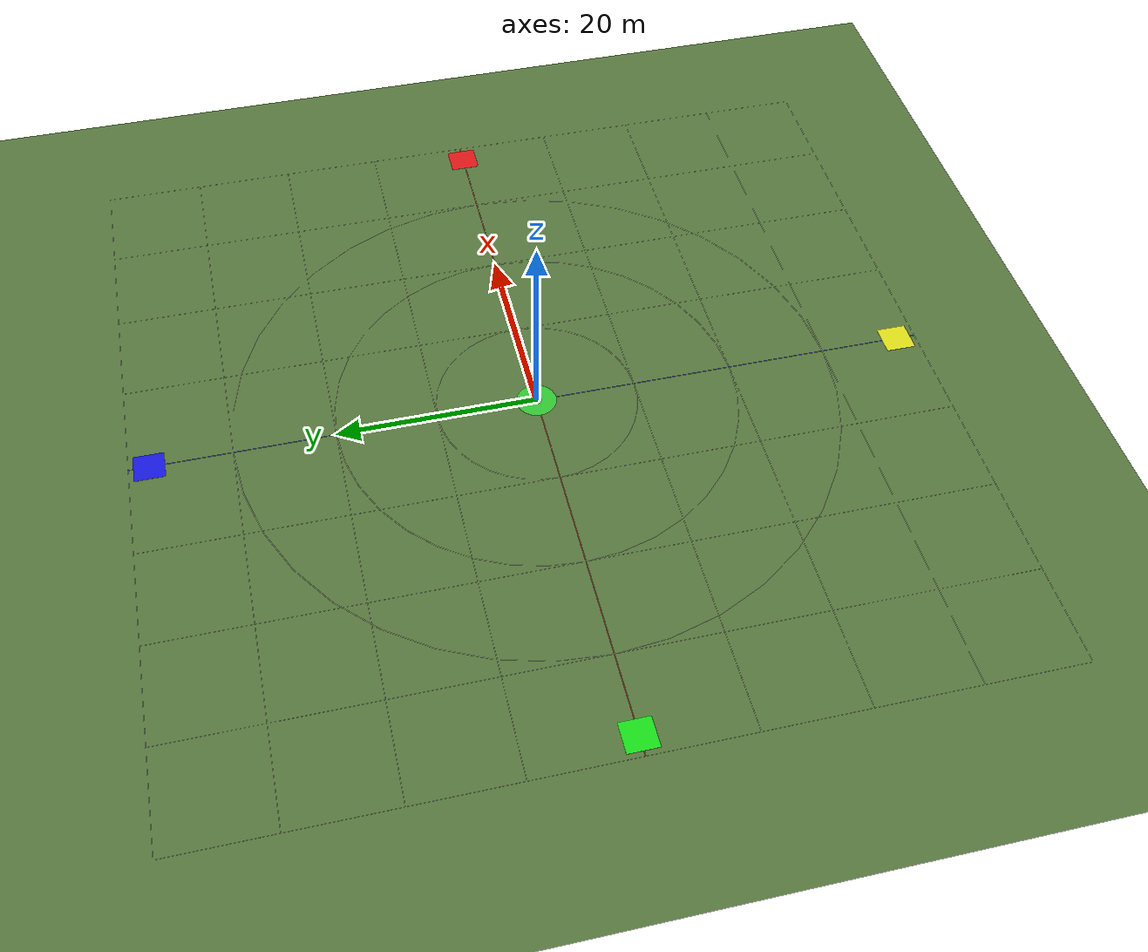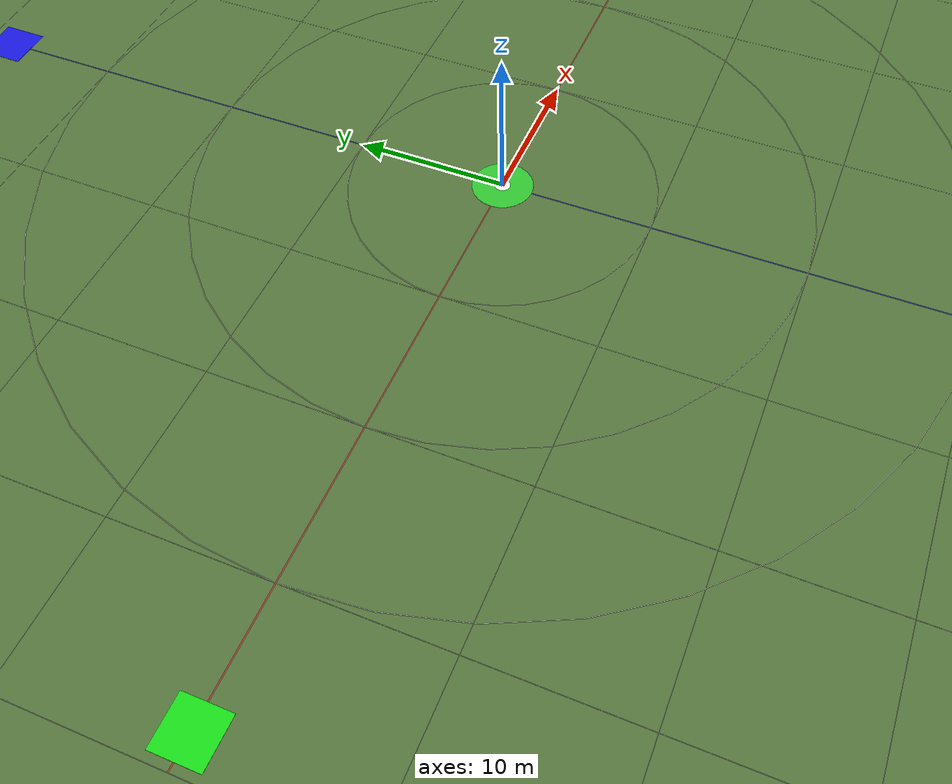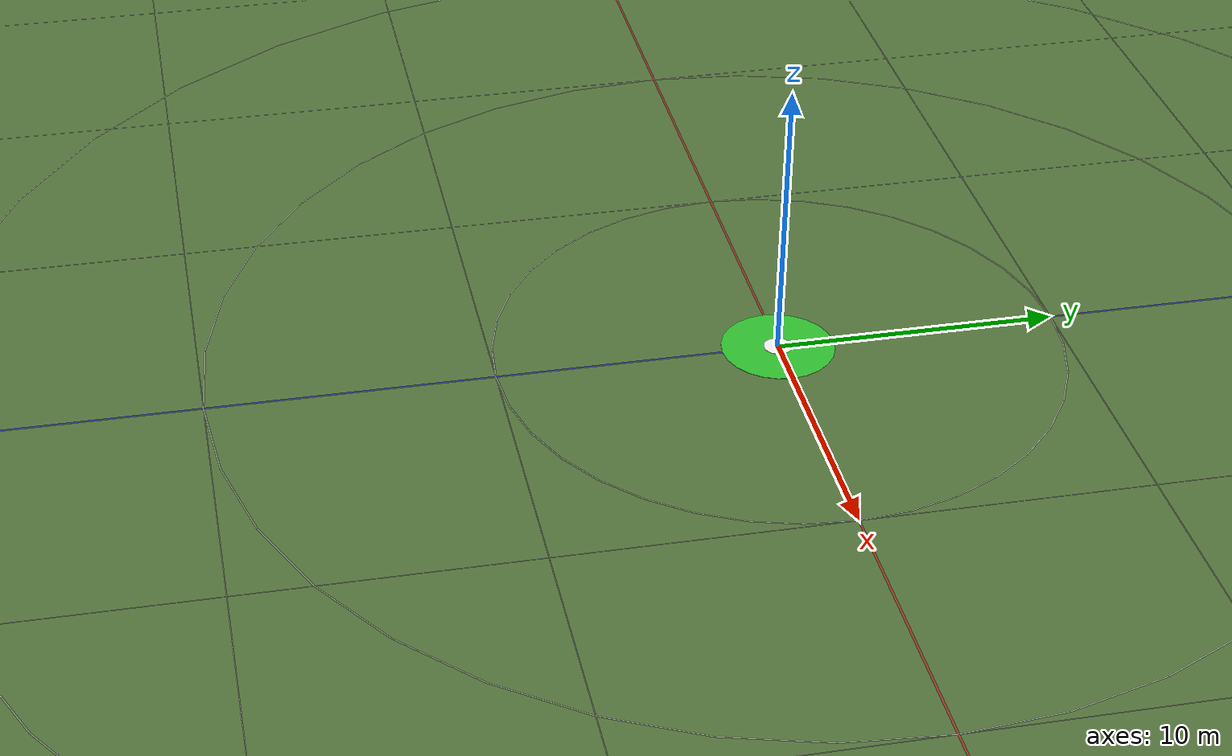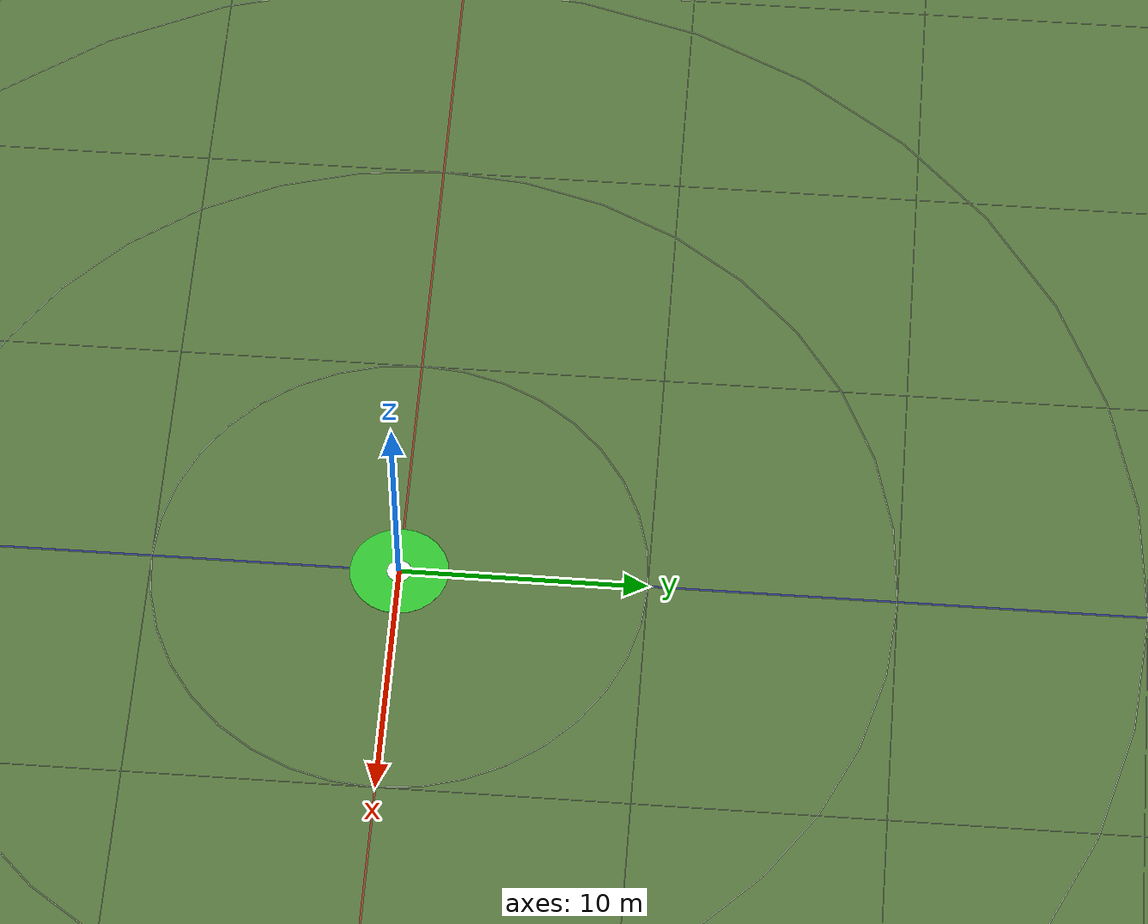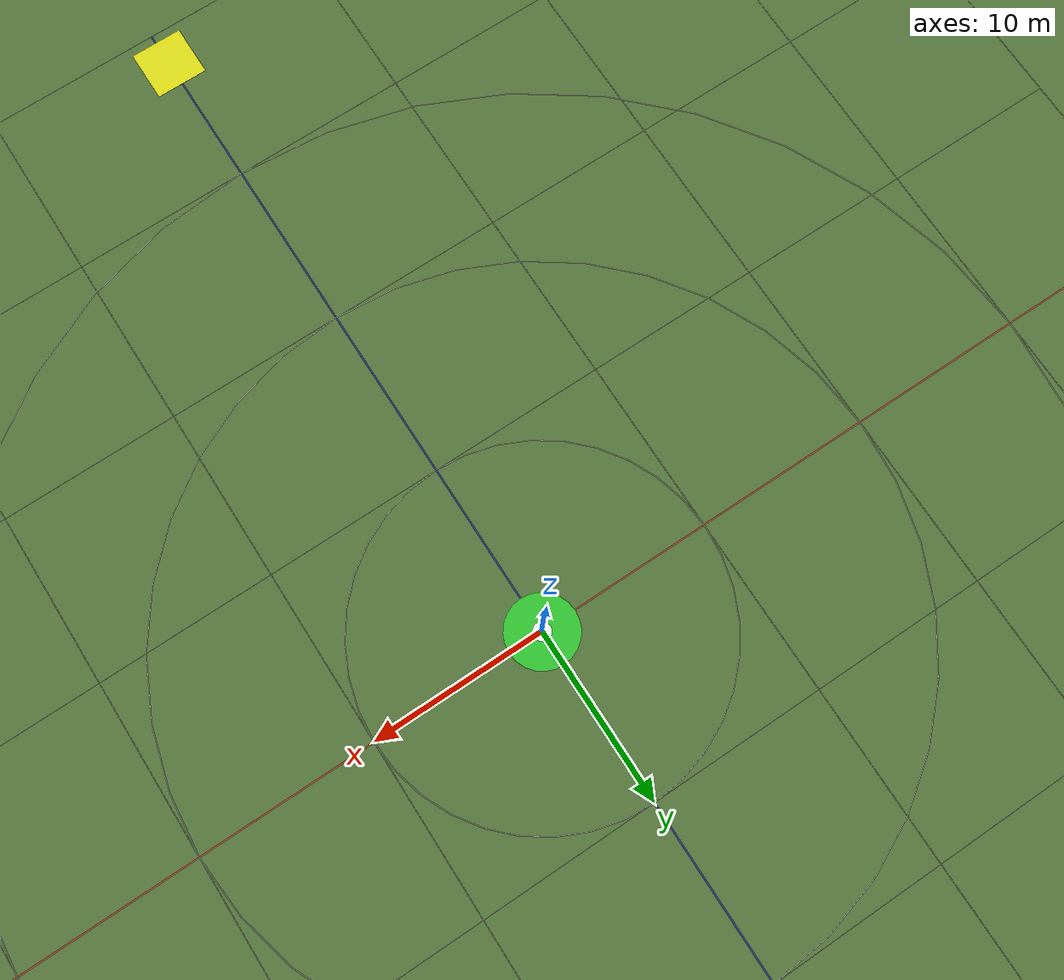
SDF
<?xml version="1.0" encoding="UTF-8"?>
<sdf version="1.9">
  <world name="default">
    <physics type="ode">
      <max_step_size>0.004</max_step_size>
      <real_time_factor>1.0</real_time_factor>
      <real_time_update_rate>250</real_time_update_rate>
    </physics>
    <gravity>0 0 -9.8</gravity>
    <magnetic_field>6e-06 2.3e-05 -4.2e-05</magnetic_field>
    <atmosphere type="adiabatic"/>
    <scene>
      <grid>false</grid>
      <ambient>0.5 0.5 0.5 1</ambient>
      <background>0.6 0.8 1.0 1</background>
      <shadows>true</shadows>
    </scene>

    <model name="ground_plane">
      <static>true</static>
      <link name="link">
        <collision name="collision">
          <geometry><plane><normal>0 0 1</normal><size>1 1</size></plane></geometry>
          <surface><friction><ode/></friction><bounce/><contact/></surface>
        </collision>
        <visual name="visual">
          <geometry><plane><normal>0 0 1</normal><size>500 500</size></plane></geometry>
          <material>
            <ambient>0.35 0.48 0.25 1</ambient>
            <diffuse>0.35 0.48 0.25 1</diffuse>
            <specular>0.1 0.1 0.1 1</specular>
          </material>
        </visual>
        <pose>0 0 0 0 0 0</pose>
        <inertial>
          <pose>0 0 0 0 0 0</pose>
          <mass>1</mass>
          <inertia><ixx>1</ixx><ixy>0</ixy><ixz>0</ixz><iyy>1</iyy><iyz>0</iyz><izz>1</izz></inertia>
        </inertial>
        <enable_wind>false</enable_wind>
      </link>
      <pose>0 0 0 0 0 0</pose>
      <self_collide>false</self_collide>
    </model>

    <light name="sunUTC" type="directional">
      <pose>0 0 500 0 0 0</pose>
      <cast_shadows>true</cast_shadows>
      <intensity>1</intensity>
      <direction>0.001 0.625 -0.78</direction>
      <diffuse>0.904 0.904 0.904 1</diffuse>
      <specular>0.271 0.271 0.271 1</specular>
      <attenuation>
        <range>2000</range><linear>0</linear><constant>1</constant><quadratic>0</quadratic>
      </attenuation>
      <spot><inner_angle>0</inner_angle><outer_angle>0</outer_angle><falloff>0</falloff></spot>
    </light>

    <spherical_coordinates>
      <surface_model>EARTH_WGS84</surface_model>
      <world_frame_orientation>ENU</world_frame_orientation>
      <latitude_deg>47.397971057728974</latitude_deg>
      <longitude_deg>8.546163739800146</longitude_deg>
      <elevation>0</elevation>
    </spherical_coordinates>

    <!-- HOME MARKER (yeşil daire) -->
    <model name="home_marker">
      <static>true</static>
      <pose>0 0 0.005 0 0 0</pose>
      <link name="link">
        <visual name="v">
          <geometry><cylinder><radius>2.0</radius><length>0.01</length></cylinder></geometry>
          <material><ambient>0.2 0.8 0.2 0.9</ambient><diffuse>0.2 0.8 0.2 0.9</diffuse></material>
        </visual>
      </link>
    </model>

    <!-- HOME İÇ DAIRE (beyaz) -->
    <model name="home_inner">
      <static>true</static>
      <pose>0 0 0.006 0 0 0</pose>
      <link name="link">
        <visual name="v">
          <geometry><cylinder><radius>0.5</radius><length>0.01</length></cylinder></geometry>
          <material><ambient>1 1 1 0.9</ambient><diffuse>1 1 1 0.9</diffuse></material>
        </visual>
      </link>
    </model>

    <model name="grid_x_0"><static>true</static>
      <pose>0 -40 0.002 0 0 0</pose>
      <link name="l"><visual name="v">
        <geometry><box><size>80 0.03 0.002</size></box></geometry>
        <material><ambient>0.6 0.6 0.6 0.7</ambient><diffuse>0.6 0.6 0.6 0.7</diffuse></material>
      </visual></link>
    </model>

    <model name="grid_x_10"><static>true</static>
      <pose>0 -30 0.002 0 0 0</pose>
      <link name="l"><visual name="v">
        <geometry><box><size>80 0.03 0.002</size></box></geometry>
        <material><ambient>0.6 0.6 0.6 0.7</ambient><diffuse>0.6 0.6 0.6 0.7</diffuse></material>
      </visual></link>
    </model>

    <model name="grid_x_20"><static>true</static>
      <pose>0 -20 0.002 0 0 0</pose>
      <link name="l"><visual name="v">
        <geometry><box><size>80 0.03 0.002</size></box></geometry>
        <material><ambient>0.6 0.6 0.6 0.7</ambient><diffuse>0.6 0.6 0.6 0.7</diffuse></material>
      </visual></link>
    </model>

    <model name="grid_x_30"><static>true</static>
      <pose>0 -10 0.002 0 0 0</pose>
      <link name="l"><visual name="v">
        <geometry><box><size>80 0.03 0.002</size></box></geometry>
        <material><ambient>0.6 0.6 0.6 0.7</ambient><diffuse>0.6 0.6 0.6 0.7</diffuse></material>
      </visual></link>
    </model>

    <model name="grid_x_40"><static>true</static>
      <pose>0 0 0.002 0 0 0</pose>
      <link name="l"><visual name="v">
        <geometry><box><size>80 0.08 0.002</size></box></geometry>
        <material><ambient>0.8 0.2 0.2 0.7</ambient><diffuse>0.8 0.2 0.2 0.7</diffuse></material>
      </visual></link>
    </model>

    <model name="grid_x_50"><static>true</static>
      <pose>0 10 0.002 0 0 0</pose>
      <link name="l"><visual name="v">
        <geometry><box><size>80 0.03 0.002</size></box></geometry>
        <material><ambient>0.6 0.6 0.6 0.7</ambient><diffuse>0.6 0.6 0.6 0.7</diffuse></material>
      </visual></link>
    </model>

    <model name="grid_x_60"><static>true</static>
      <pose>0 20 0.002 0 0 0</pose>
      <link name="l"><visual name="v">
        <geometry><box><size>80 0.03 0.002</size></box></geometry>
        <material><ambient>0.6 0.6 0.6 0.7</ambient><diffuse>0.6 0.6 0.6 0.7</diffuse></material>
      </visual></link>
    </model>

    <model name="grid_x_70"><static>true</static>
      <pose>0 30 0.002 0 0 0</pose>
      <link name="l"><visual name="v">
        <geometry><box><size>80 0.03 0.002</size></box></geometry>
        <material><ambient>0.6 0.6 0.6 0.7</ambient><diffuse>0.6 0.6 0.6 0.7</diffuse></material>
      </visual></link>
    </model>

    <model name="grid_x_80"><static>true</static>
      <pose>0 40 0.002 0 0 0</pose>
      <link name="l"><visual name="v">
        <geometry><box><size>80 0.03 0.002</size></box></geometry>
        <material><ambient>0.6 0.6 0.6 0.7</ambient><diffuse>0.6 0.6 0.6 0.7</diffuse></material>
      </visual></link>
    </model>

    <model name="grid_y_0"><static>true</static>
      <pose>-40 0 0.002 0 0 1.5708</pose>
      <link name="l"><visual name="v">
        <geometry><box><size>80 0.03 0.002</size></box></geometry>
        <material><ambient>0.6 0.6 0.6 0.7</ambient><diffuse>0.6 0.6 0.6 0.7</diffuse></material>
      </visual></link>
    </model>

    <model name="grid_y_10"><static>true</static>
      <pose>-30 0 0.002 0 0 1.5708</pose>
      <link name="l"><visual name="v">
        <geometry><box><size>80 0.03 0.002</size></box></geometry>
        <material><ambient>0.6 0.6 0.6 0.7</ambient><diffuse>0.6 0.6 0.6 0.7</diffuse></material>
      </visual></link>
    </model>

    <model name="grid_y_20"><static>true</static>
      <pose>-20 0 0.002 0 0 1.5708</pose>
      <link name="l"><visual name="v">
        <geometry><box><size>80 0.03 0.002</size></box></geometry>
        <material><ambient>0.6 0.6 0.6 0.7</ambient><diffuse>0.6 0.6 0.6 0.7</diffuse></material>
      </visual></link>
    </model>

    <model name="grid_y_30"><static>true</static>
      <pose>-10 0 0.002 0 0 1.5708</pose>
      <link name="l"><visual name="v">
        <geometry><box><size>80 0.03 0.002</size></box></geometry>
        <material><ambient>0.6 0.6 0.6 0.7</ambient><diffuse>0.6 0.6 0.6 0.7</diffuse></material>
      </visual></link>
    </model>

    <model name="grid_y_40"><static>true</static>
      <pose>0 0 0.002 0 0 1.5708</pose>
      <link name="l"><visual name="v">
        <geometry><box><size>80 0.08 0.002</size></box></geometry>
        <material><ambient>0.2 0.2 0.8 0.7</ambient><diffuse>0.2 0.2 0.8 0.7</diffuse></material>
      </visual></link>
    </model>

    <model name="grid_y_50"><static>true</static>
      <pose>10 0 0.002 0 0 1.5708</pose>
      <link name="l"><visual name="v">
        <geometry><box><size>80 0.03 0.002</size></box></geometry>
        <material><ambient>0.6 0.6 0.6 0.7</ambient><diffuse>0.6 0.6 0.6 0.7</diffuse></material>
      </visual></link>
    </model>

    <model name="grid_y_60"><static>true</static>
      <pose>20 0 0.002 0 0 1.5708</pose>
      <link name="l"><visual name="v">
        <geometry><box><size>80 0.03 0.002</size></box></geometry>
        <material><ambient>0.6 0.6 0.6 0.7</ambient><diffuse>0.6 0.6 0.6 0.7</diffuse></material>
      </visual></link>
    </model>

    <model name="grid_y_70"><static>true</static>
      <pose>30 0 0.002 0 0 1.5708</pose>
      <link name="l"><visual name="v">
        <geometry><box><size>80 0.03 0.002</size></box></geometry>
        <material><ambient>0.6 0.6 0.6 0.7</ambient><diffuse>0.6 0.6 0.6 0.7</diffuse></material>
      </visual></link>
    </model>

    <model name="grid_y_80"><static>true</static>
      <pose>40 0 0.002 0 0 1.5708</pose>
      <link name="l"><visual name="v">
        <geometry><box><size>80 0.03 0.002</size></box></geometry>
        <material><ambient>0.6 0.6 0.6 0.7</ambient><diffuse>0.6 0.6 0.6 0.7</diffuse></material>
      </visual></link>
    </model>

    <model name="dir_north"><static>true</static>
      <pose>0 38 0.01 0 0 0</pose>
      <link name="l"><visual name="v">
        <geometry><box><size>3.0 3.0 0.02</size></box></geometry>
        <material><ambient>0.1 0.1 0.9 0.9</ambient><diffuse>0.1 0.1 0.9 0.9</diffuse></material>
      </visual></link>
    </model>

    <model name="dir_south"><static>true</static>
      <pose>0 -38 0.01 0 0 0</pose>
      <link name="l"><visual name="v">
        <geometry><box><size>3.0 3.0 0.02</size></box></geometry>
        <material><ambient>0.9 0.9 0.1 0.9</ambient><diffuse>0.9 0.9 0.1 0.9</diffuse></material>
      </visual></link>
    </model>

    <model name="dir_east"><static>true</static>
      <pose>38 0 0.01 0 0 0</pose>
      <link name="l"><visual name="v">
        <geometry><box><size>3.0 3.0 0.02</size></box></geometry>
        <material><ambient>0.9 0.1 0.1 0.9</ambient><diffuse>0.9 0.1 0.1 0.9</diffuse></material>
      </visual></link>
    </model>

    <model name="dir_west"><static>true</static>
      <pose>-38 0 0.01 0 0 0</pose>
      <link name="l"><visual name="v">
        <geometry><box><size>3.0 3.0 0.02</size></box></geometry>
        <material><ambient>0.1 0.9 0.1 0.9</ambient><diffuse>0.1 0.9 0.1 0.9</diffuse></material>
      </visual></link>
    </model>

    <model name="ring_10_0"><static>true</static>
      <pose>9.92403876506104 0.8682408883346516 0.003 0 0 1.6580627893946138</pose>
      <link name="l"><visual name="v">
        <geometry><box><size>1.7431148549531634 0.05 0.003</size></box></geometry>
        <material><ambient>0.9 0.9 0.9 0.5</ambient><diffuse>0.9 0.9 0.9 0.5</diffuse></material>
      </visual></link>
    </model>

    <model name="ring_10_1"><static>true</static>
      <pose>9.622501868990582 2.5783416049629952 0.003 0 0 1.8325957145940448</pose>
      <link name="l"><visual name="v">
        <geometry><box><size>1.7431148549531628 0.05 0.003</size></box></geometry>
        <material><ambient>0.9 0.9 0.9 0.5</ambient><diffuse>0.9 0.9 0.9 0.5</diffuse></material>
      </visual></link>
    </model>

    <model name="ring_10_2"><static>true</static>
      <pose>9.028590122851735 4.210100716628343 0.003 0 0 2.0071286397934793</pose>
      <link name="l"><visual name="v">
        <geometry><box><size>1.7431148549531632 0.05 0.003</size></box></geometry>
        <material><ambient>0.9 0.9 0.9 0.5</ambient><diffuse>0.9 0.9 0.9 0.5</diffuse></material>
      </visual></link>
    </model>

    <model name="ring_10_3"><static>true</static>
      <pose>8.160349234517083 5.713938048432696 0.003 0 0 2.1816615649929125</pose>
      <link name="l"><visual name="v">
        <geometry><box><size>1.7431148549531643 0.05 0.003</size></box></geometry>
        <material><ambient>0.9 0.9 0.9 0.5</ambient><diffuse>0.9 0.9 0.9 0.5</diffuse></material>
      </visual></link>
    </model>

    <model name="ring_10_4"><static>true</static>
      <pose>7.044160264027587 7.044160264027586 0.003 0 0 2.3561944901923444</pose>
      <link name="l"><visual name="v">
        <geometry><box><size>1.7431148549531632 0.05 0.003</size></box></geometry>
        <material><ambient>0.9 0.9 0.9 0.5</ambient><diffuse>0.9 0.9 0.9 0.5</diffuse></material>
      </visual></link>
    </model>

    <model name="ring_10_5"><static>true</static>
      <pose>5.713938048432697 8.160349234517083 0.003 0 0 2.530727415391778</pose>
      <link name="l"><visual name="v">
        <geometry><box><size>1.7431148549531625 0.05 0.003</size></box></geometry>
        <material><ambient>0.9 0.9 0.9 0.5</ambient><diffuse>0.9 0.9 0.9 0.5</diffuse></material>
      </visual></link>
    </model>

    <model name="ring_10_6"><static>true</static>
      <pose>4.210100716628345 9.028590122851735 0.003 0 0 2.7052603405912103</pose>
      <link name="l"><visual name="v">
        <geometry><box><size>1.7431148549531637 0.05 0.003</size></box></geometry>
        <material><ambient>0.9 0.9 0.9 0.5</ambient><diffuse>0.9 0.9 0.9 0.5</diffuse></material>
      </visual></link>
    </model>

    <model name="ring_10_7"><static>true</static>
      <pose>2.578341604962996 9.622501868990582 0.003 0 0 2.879793265790644</pose>
      <link name="l"><visual name="v">
        <geometry><box><size>1.7431148549531637 0.05 0.003</size></box></geometry>
        <material><ambient>0.9 0.9 0.9 0.5</ambient><diffuse>0.9 0.9 0.9 0.5</diffuse></material>
      </visual></link>
    </model>

    <model name="ring_10_8"><static>true</static>
      <pose>0.8682408883346524 9.92403876506104 0.003 0 0 3.0543261909900763</pose>
      <link name="l"><visual name="v">
        <geometry><box><size>1.7431148549531637 0.05 0.003</size></box></geometry>
        <material><ambient>0.9 0.9 0.9 0.5</ambient><diffuse>0.9 0.9 0.9 0.5</diffuse></material>
      </visual></link>
    </model>

    <model name="ring_10_9"><static>true</static>
      <pose>-0.8682408883346512 9.92403876506104 0.003 0 0 -3.0543261909900763</pose>
      <link name="l"><visual name="v">
        <geometry><box><size>1.7431148549531639 0.05 0.003</size></box></geometry>
        <material><ambient>0.9 0.9 0.9 0.5</ambient><diffuse>0.9 0.9 0.9 0.5</diffuse></material>
      </visual></link>
    </model>

    <model name="ring_10_10"><static>true</static>
      <pose>-2.578341604962994 9.622501868990582 0.003 0 0 -2.879793265790645</pose>
      <link name="l"><visual name="v">
        <geometry><box><size>1.7431148549531608 0.05 0.003</size></box></geometry>
        <material><ambient>0.9 0.9 0.9 0.5</ambient><diffuse>0.9 0.9 0.9 0.5</diffuse></material>
      </visual></link>
    </model>

    <model name="ring_10_11"><static>true</static>
      <pose>-4.210100716628341 9.028590122851735 0.003 0 0 -2.705260340591211</pose>
      <link name="l"><visual name="v">
        <geometry><box><size>1.7431148549531643 0.05 0.003</size></box></geometry>
        <material><ambient>0.9 0.9 0.9 0.5</ambient><diffuse>0.9 0.9 0.9 0.5</diffuse></material>
      </visual></link>
    </model>

    <model name="ring_10_12"><static>true</static>
      <pose>-5.713938048432696 8.160349234517083 0.003 0 0 -2.530727415391778</pose>
      <link name="l"><visual name="v">
        <geometry><box><size>1.7431148549531659 0.05 0.003</size></box></geometry>
        <material><ambient>0.9 0.9 0.9 0.5</ambient><diffuse>0.9 0.9 0.9 0.5</diffuse></material>
      </visual></link>
    </model>

    <model name="ring_10_13"><static>true</static>
      <pose>-7.044160264027586 7.044160264027587 0.003 0 0 -2.3561944901923453</pose>
      <link name="l"><visual name="v">
        <geometry><box><size>1.7431148549531608 0.05 0.003</size></box></geometry>
        <material><ambient>0.9 0.9 0.9 0.5</ambient><diffuse>0.9 0.9 0.9 0.5</diffuse></material>
      </visual></link>
    </model>

    <model name="ring_10_14"><static>true</static>
      <pose>-8.160349234517081 5.713938048432699 0.003 0 0 -2.1816615649929125</pose>
      <link name="l"><visual name="v">
        <geometry><box><size>1.7431148549531623 0.05 0.003</size></box></geometry>
        <material><ambient>0.9 0.9 0.9 0.5</ambient><diffuse>0.9 0.9 0.9 0.5</diffuse></material>
      </visual></link>
    </model>

    <model name="ring_10_15"><static>true</static>
      <pose>-9.028590122851735 4.210100716628347 0.003 0 0 -2.007128639793479</pose>
      <link name="l"><visual name="v">
        <geometry><box><size>1.7431148549531656 0.05 0.003</size></box></geometry>
        <material><ambient>0.9 0.9 0.9 0.5</ambient><diffuse>0.9 0.9 0.9 0.5</diffuse></material>
      </visual></link>
    </model>

    <model name="ring_10_16"><static>true</static>
      <pose>-9.622501868990582 2.5783416049629957 0.003 0 0 -1.8325957145940455</pose>
      <link name="l"><visual name="v">
        <geometry><box><size>1.7431148549531654 0.05 0.003</size></box></geometry>
        <material><ambient>0.9 0.9 0.9 0.5</ambient><diffuse>0.9 0.9 0.9 0.5</diffuse></material>
      </visual></link>
    </model>

    <model name="ring_10_17"><static>true</static>
      <pose>-9.92403876506104 0.8682408883346521 0.003 0 0 -1.6580627893946138</pose>
      <link name="l"><visual name="v">
        <geometry><box><size>1.7431148549531617 0.05 0.003</size></box></geometry>
        <material><ambient>0.9 0.9 0.9 0.5</ambient><diffuse>0.9 0.9 0.9 0.5</diffuse></material>
      </visual></link>
    </model>

    <model name="ring_10_18"><static>true</static>
      <pose>-9.924038765061042 -0.8682408883346495 0.003 0 0 -1.4835298641951804</pose>
      <link name="l"><visual name="v">
        <geometry><box><size>1.7431148549531617 0.05 0.003</size></box></geometry>
        <material><ambient>0.9 0.9 0.9 0.5</ambient><diffuse>0.9 0.9 0.9 0.5</diffuse></material>
      </visual></link>
    </model>

    <model name="ring_10_19"><static>true</static>
      <pose>-9.622501868990582 -2.5783416049629935 0.003 0 0 -1.3089969389957479</pose>
      <link name="l"><visual name="v">
        <geometry><box><size>1.7431148549531656 0.05 0.003</size></box></geometry>
        <material><ambient>0.9 0.9 0.9 0.5</ambient><diffuse>0.9 0.9 0.9 0.5</diffuse></material>
      </visual></link>
    </model>

    <model name="ring_10_20"><static>true</static>
      <pose>-9.028590122851735 -4.210100716628344 0.003 0 0 -1.1344640137963133</pose>
      <link name="l"><visual name="v">
        <geometry><box><size>1.7431148549531659 0.05 0.003</size></box></geometry>
        <material><ambient>0.9 0.9 0.9 0.5</ambient><diffuse>0.9 0.9 0.9 0.5</diffuse></material>
      </visual></link>
    </model>

    <model name="ring_10_21"><static>true</static>
      <pose>-8.160349234517085 -5.713938048432695 0.003 0 0 -0.9599310885968815</pose>
      <link name="l"><visual name="v">
        <geometry><box><size>1.743114854953157 0.05 0.003</size></box></geometry>
        <material><ambient>0.9 0.9 0.9 0.5</ambient><diffuse>0.9 0.9 0.9 0.5</diffuse></material>
      </visual></link>
    </model>

    <model name="ring_10_22"><static>true</static>
      <pose>-7.044160264027589 -7.0441602640275836 0.003 0 0 -0.7853981633974491</pose>
      <link name="l"><visual name="v">
        <geometry><box><size>1.7431148549531663 0.05 0.003</size></box></geometry>
        <material><ambient>0.9 0.9 0.9 0.5</ambient><diffuse>0.9 0.9 0.9 0.5</diffuse></material>
      </visual></link>
    </model>

    <model name="ring_10_23"><static>true</static>
      <pose>-5.7139380484327 -8.160349234517081 0.003 0 0 -0.6108652381980155</pose>
      <link name="l"><visual name="v">
        <geometry><box><size>1.7431148549531605 0.05 0.003</size></box></geometry>
        <material><ambient>0.9 0.9 0.9 0.5</ambient><diffuse>0.9 0.9 0.9 0.5</diffuse></material>
      </visual></link>
    </model>

    <model name="ring_10_24"><static>true</static>
      <pose>-4.210100716628345 -9.028590122851735 0.003 0 0 -0.43633231299858294</pose>
      <link name="l"><visual name="v">
        <geometry><box><size>1.7431148549531712 0.05 0.003</size></box></geometry>
        <material><ambient>0.9 0.9 0.9 0.5</ambient><diffuse>0.9 0.9 0.9 0.5</diffuse></material>
      </visual></link>
    </model>

    <model name="ring_10_25"><static>true</static>
      <pose>-2.5783416049629944 -9.622501868990582 0.003 0 0 -0.2617993877991484</pose>
      <link name="l"><visual name="v">
        <geometry><box><size>1.743114854953161 0.05 0.003</size></box></geometry>
        <material><ambient>0.9 0.9 0.9 0.5</ambient><diffuse>0.9 0.9 0.9 0.5</diffuse></material>
      </visual></link>
    </model>

    <model name="ring_10_26"><static>true</static>
      <pose>-0.8682408883346525 -9.92403876506104 0.003 0 0 -0.08726646259971718</pose>
      <link name="l"><visual name="v">
        <geometry><box><size>1.7431148549531617 0.05 0.003</size></box></geometry>
        <material><ambient>0.9 0.9 0.9 0.5</ambient><diffuse>0.9 0.9 0.9 0.5</diffuse></material>
      </visual></link>
    </model>

    <model name="ring_10_27"><static>true</static>
      <pose>0.868240888334649 -9.924038765061042 0.003 0 0 0.08726646259971617</pose>
      <link name="l"><visual name="v">
        <geometry><box><size>1.7431148549531614 0.05 0.003</size></box></geometry>
        <material><ambient>0.9 0.9 0.9 0.5</ambient><diffuse>0.9 0.9 0.9 0.5</diffuse></material>
      </visual></link>
    </model>

    <model name="ring_10_28"><static>true</static>
      <pose>2.578341604962995 -9.622501868990582 0.003 0 0 0.2617993877991492</pose>
      <link name="l"><visual name="v">
        <geometry><box><size>1.7431148549531696 0.05 0.003</size></box></geometry>
        <material><ambient>0.9 0.9 0.9 0.5</ambient><diffuse>0.9 0.9 0.9 0.5</diffuse></material>
      </visual></link>
    </model>

    <model name="ring_10_29"><static>true</static>
      <pose>4.210100716628341 -9.028590122851737 0.003 0 0 0.43633231299858216</pose>
      <link name="l"><visual name="v">
        <geometry><box><size>1.7431148549531528 0.05 0.003</size></box></geometry>
        <material><ambient>0.9 0.9 0.9 0.5</ambient><diffuse>0.9 0.9 0.9 0.5</diffuse></material>
      </visual></link>
    </model>

    <model name="ring_10_30"><static>true</static>
      <pose>5.713938048432693 -8.160349234517085 0.003 0 0 0.6108652381980151</pose>
      <link name="l"><visual name="v">
        <geometry><box><size>1.743114854953171 0.05 0.003</size></box></geometry>
        <material><ambient>0.9 0.9 0.9 0.5</ambient><diffuse>0.9 0.9 0.9 0.5</diffuse></material>
      </visual></link>
    </model>

    <model name="ring_10_31"><static>true</static>
      <pose>7.044160264027585 -7.044160264027589 0.003 0 0 0.785398163397448</pose>
      <link name="l"><visual name="v">
        <geometry><box><size>1.7431148549531608 0.05 0.003</size></box></geometry>
        <material><ambient>0.9 0.9 0.9 0.5</ambient><diffuse>0.9 0.9 0.9 0.5</diffuse></material>
      </visual></link>
    </model>

    <model name="ring_10_32"><static>true</static>
      <pose>8.160349234517083 -5.713938048432697 0.003 0 0 0.9599310885968811</pose>
      <link name="l"><visual name="v">
        <geometry><box><size>1.7431148549531714 0.05 0.003</size></box></geometry>
        <material><ambient>0.9 0.9 0.9 0.5</ambient><diffuse>0.9 0.9 0.9 0.5</diffuse></material>
      </visual></link>
    </model>

    <model name="ring_10_33"><static>true</static>
      <pose>9.028590122851737 -4.210100716628341 0.003 0 0 1.1344640137963142</pose>
      <link name="l"><visual name="v">
        <geometry><box><size>1.7431148549531608 0.05 0.003</size></box></geometry>
        <material><ambient>0.9 0.9 0.9 0.5</ambient><diffuse>0.9 0.9 0.9 0.5</diffuse></material>
      </visual></link>
    </model>

    <model name="ring_10_34"><static>true</static>
      <pose>9.622501868990582 -2.5783416049629952 0.003 0 0 1.3089969389957483</pose>
      <link name="l"><visual name="v">
        <geometry><box><size>1.7431148549531612 0.05 0.003</size></box></geometry>
        <material><ambient>0.9 0.9 0.9 0.5</ambient><diffuse>0.9 0.9 0.9 0.5</diffuse></material>
      </visual></link>
    </model>

    <model name="ring_10_35"><static>true</static>
      <pose>9.92403876506104 -0.8682408883346532 0.003 0 0 1.4835298641951795</pose>
      <link name="l"><visual name="v">
        <geometry><box><size>1.7431148549531617 0.05 0.003</size></box></geometry>
        <material><ambient>0.9 0.9 0.9 0.5</ambient><diffuse>0.9 0.9 0.9 0.5</diffuse></material>
      </visual></link>
    </model>

    <model name="ring_20_0"><static>true</static>
      <pose>19.84807753012208 1.7364817766693033 0.003 0 0 1.6580627893946138</pose>
      <link name="l"><visual name="v">
        <geometry><box><size>3.486229709906327 0.05 0.003</size></box></geometry>
        <material><ambient>0.9 0.9 0.9 0.5</ambient><diffuse>0.9 0.9 0.9 0.5</diffuse></material>
      </visual></link>
    </model>

    <model name="ring_20_1"><static>true</static>
      <pose>19.245003737981165 5.1566832099259905 0.003 0 0 1.8325957145940448</pose>
      <link name="l"><visual name="v">
        <geometry><box><size>3.4862297099063255 0.05 0.003</size></box></geometry>
        <material><ambient>0.9 0.9 0.9 0.5</ambient><diffuse>0.9 0.9 0.9 0.5</diffuse></material>
      </visual></link>
    </model>

    <model name="ring_20_2"><static>true</static>
      <pose>18.05718024570347 8.420201433256686 0.003 0 0 2.0071286397934793</pose>
      <link name="l"><visual name="v">
        <geometry><box><size>3.4862297099063264 0.05 0.003</size></box></geometry>
        <material><ambient>0.9 0.9 0.9 0.5</ambient><diffuse>0.9 0.9 0.9 0.5</diffuse></material>
      </visual></link>
    </model>

    <model name="ring_20_3"><static>true</static>
      <pose>16.320698469034166 11.427876096865392 0.003 0 0 2.1816615649929125</pose>
      <link name="l"><visual name="v">
        <geometry><box><size>3.4862297099063286 0.05 0.003</size></box></geometry>
        <material><ambient>0.9 0.9 0.9 0.5</ambient><diffuse>0.9 0.9 0.9 0.5</diffuse></material>
      </visual></link>
    </model>

    <model name="ring_20_4"><static>true</static>
      <pose>14.088320528055174 14.088320528055172 0.003 0 0 2.3561944901923444</pose>
      <link name="l"><visual name="v">
        <geometry><box><size>3.4862297099063264 0.05 0.003</size></box></geometry>
        <material><ambient>0.9 0.9 0.9 0.5</ambient><diffuse>0.9 0.9 0.9 0.5</diffuse></material>
      </visual></link>
    </model>

    <model name="ring_20_5"><static>true</static>
      <pose>11.427876096865393 16.320698469034166 0.003 0 0 2.530727415391778</pose>
      <link name="l"><visual name="v">
        <geometry><box><size>3.486229709906325 0.05 0.003</size></box></geometry>
        <material><ambient>0.9 0.9 0.9 0.5</ambient><diffuse>0.9 0.9 0.9 0.5</diffuse></material>
      </visual></link>
    </model>

    <model name="ring_20_6"><static>true</static>
      <pose>8.42020143325669 18.05718024570347 0.003 0 0 2.7052603405912103</pose>
      <link name="l"><visual name="v">
        <geometry><box><size>3.4862297099063273 0.05 0.003</size></box></geometry>
        <material><ambient>0.9 0.9 0.9 0.5</ambient><diffuse>0.9 0.9 0.9 0.5</diffuse></material>
      </visual></link>
    </model>

    <model name="ring_20_7"><static>true</static>
      <pose>5.156683209925992 19.245003737981165 0.003 0 0 2.879793265790644</pose>
      <link name="l"><visual name="v">
        <geometry><box><size>3.4862297099063273 0.05 0.003</size></box></geometry>
        <material><ambient>0.9 0.9 0.9 0.5</ambient><diffuse>0.9 0.9 0.9 0.5</diffuse></material>
      </visual></link>
    </model>

    <model name="ring_20_8"><static>true</static>
      <pose>1.7364817766693048 19.84807753012208 0.003 0 0 3.0543261909900763</pose>
      <link name="l"><visual name="v">
        <geometry><box><size>3.4862297099063273 0.05 0.003</size></box></geometry>
        <material><ambient>0.9 0.9 0.9 0.5</ambient><diffuse>0.9 0.9 0.9 0.5</diffuse></material>
      </visual></link>
    </model>

    <model name="ring_20_9"><static>true</static>
      <pose>-1.7364817766693024 19.84807753012208 0.003 0 0 -3.0543261909900763</pose>
      <link name="l"><visual name="v">
        <geometry><box><size>3.4862297099063277 0.05 0.003</size></box></geometry>
        <material><ambient>0.9 0.9 0.9 0.5</ambient><diffuse>0.9 0.9 0.9 0.5</diffuse></material>
      </visual></link>
    </model>

    <model name="ring_20_10"><static>true</static>
      <pose>-5.156683209925988 19.245003737981165 0.003 0 0 -2.879793265790645</pose>
      <link name="l"><visual name="v">
        <geometry><box><size>3.4862297099063215 0.05 0.003</size></box></geometry>
        <material><ambient>0.9 0.9 0.9 0.5</ambient><diffuse>0.9 0.9 0.9 0.5</diffuse></material>
      </visual></link>
    </model>

    <model name="ring_20_11"><static>true</static>
      <pose>-8.420201433256683 18.05718024570347 0.003 0 0 -2.705260340591211</pose>
      <link name="l"><visual name="v">
        <geometry><box><size>3.4862297099063286 0.05 0.003</size></box></geometry>
        <material><ambient>0.9 0.9 0.9 0.5</ambient><diffuse>0.9 0.9 0.9 0.5</diffuse></material>
      </visual></link>
    </model>

    <model name="ring_20_12"><static>true</static>
      <pose>-11.427876096865392 16.320698469034166 0.003 0 0 -2.530727415391778</pose>
      <link name="l"><visual name="v">
        <geometry><box><size>3.4862297099063317 0.05 0.003</size></box></geometry>
        <material><ambient>0.9 0.9 0.9 0.5</ambient><diffuse>0.9 0.9 0.9 0.5</diffuse></material>
      </visual></link>
    </model>

    <model name="ring_20_13"><static>true</static>
      <pose>-14.088320528055172 14.088320528055174 0.003 0 0 -2.3561944901923453</pose>
      <link name="l"><visual name="v">
        <geometry><box><size>3.4862297099063215 0.05 0.003</size></box></geometry>
        <material><ambient>0.9 0.9 0.9 0.5</ambient><diffuse>0.9 0.9 0.9 0.5</diffuse></material>
      </visual></link>
    </model>

    <model name="ring_20_14"><static>true</static>
      <pose>-16.320698469034163 11.427876096865399 0.003 0 0 -2.1816615649929125</pose>
      <link name="l"><visual name="v">
        <geometry><box><size>3.4862297099063246 0.05 0.003</size></box></geometry>
        <material><ambient>0.9 0.9 0.9 0.5</ambient><diffuse>0.9 0.9 0.9 0.5</diffuse></material>
      </visual></link>
    </model>

    <model name="ring_20_15"><static>true</static>
      <pose>-18.05718024570347 8.420201433256693 0.003 0 0 -2.007128639793479</pose>
      <link name="l"><visual name="v">
        <geometry><box><size>3.4862297099063313 0.05 0.003</size></box></geometry>
        <material><ambient>0.9 0.9 0.9 0.5</ambient><diffuse>0.9 0.9 0.9 0.5</diffuse></material>
      </visual></link>
    </model>

    <model name="ring_20_16"><static>true</static>
      <pose>-19.245003737981165 5.156683209925991 0.003 0 0 -1.8325957145940455</pose>
      <link name="l"><visual name="v">
        <geometry><box><size>3.486229709906331 0.05 0.003</size></box></geometry>
        <material><ambient>0.9 0.9 0.9 0.5</ambient><diffuse>0.9 0.9 0.9 0.5</diffuse></material>
      </visual></link>
    </model>

    <model name="ring_20_17"><static>true</static>
      <pose>-19.84807753012208 1.7364817766693041 0.003 0 0 -1.6580627893946138</pose>
      <link name="l"><visual name="v">
        <geometry><box><size>3.4862297099063233 0.05 0.003</size></box></geometry>
        <material><ambient>0.9 0.9 0.9 0.5</ambient><diffuse>0.9 0.9 0.9 0.5</diffuse></material>
      </visual></link>
    </model>

    <model name="ring_20_18"><static>true</static>
      <pose>-19.848077530122083 -1.736481776669299 0.003 0 0 -1.4835298641951804</pose>
      <link name="l"><visual name="v">
        <geometry><box><size>3.4862297099063233 0.05 0.003</size></box></geometry>
        <material><ambient>0.9 0.9 0.9 0.5</ambient><diffuse>0.9 0.9 0.9 0.5</diffuse></material>
      </visual></link>
    </model>

    <model name="ring_20_19"><static>true</static>
      <pose>-19.245003737981165 -5.156683209925987 0.003 0 0 -1.3089969389957479</pose>
      <link name="l"><visual name="v">
        <geometry><box><size>3.4862297099063313 0.05 0.003</size></box></geometry>
        <material><ambient>0.9 0.9 0.9 0.5</ambient><diffuse>0.9 0.9 0.9 0.5</diffuse></material>
      </visual></link>
    </model>

    <model name="ring_20_20"><static>true</static>
      <pose>-18.05718024570347 -8.420201433256688 0.003 0 0 -1.1344640137963133</pose>
      <link name="l"><visual name="v">
        <geometry><box><size>3.4862297099063317 0.05 0.003</size></box></geometry>
        <material><ambient>0.9 0.9 0.9 0.5</ambient><diffuse>0.9 0.9 0.9 0.5</diffuse></material>
      </visual></link>
    </model>

    <model name="ring_20_21"><static>true</static>
      <pose>-16.32069846903417 -11.42787609686539 0.003 0 0 -0.9599310885968815</pose>
      <link name="l"><visual name="v">
        <geometry><box><size>3.486229709906314 0.05 0.003</size></box></geometry>
        <material><ambient>0.9 0.9 0.9 0.5</ambient><diffuse>0.9 0.9 0.9 0.5</diffuse></material>
      </visual></link>
    </model>

    <model name="ring_20_22"><static>true</static>
      <pose>-14.088320528055178 -14.088320528055167 0.003 0 0 -0.7853981633974491</pose>
      <link name="l"><visual name="v">
        <geometry><box><size>3.4862297099063326 0.05 0.003</size></box></geometry>
        <material><ambient>0.9 0.9 0.9 0.5</ambient><diffuse>0.9 0.9 0.9 0.5</diffuse></material>
      </visual></link>
    </model>

    <model name="ring_20_23"><static>true</static>
      <pose>-11.4278760968654 -16.320698469034163 0.003 0 0 -0.6108652381980155</pose>
      <link name="l"><visual name="v">
        <geometry><box><size>3.486229709906321 0.05 0.003</size></box></geometry>
        <material><ambient>0.9 0.9 0.9 0.5</ambient><diffuse>0.9 0.9 0.9 0.5</diffuse></material>
      </visual></link>
    </model>

    <model name="ring_20_24"><static>true</static>
      <pose>-8.42020143325669 -18.05718024570347 0.003 0 0 -0.43633231299858294</pose>
      <link name="l"><visual name="v">
        <geometry><box><size>3.4862297099063424 0.05 0.003</size></box></geometry>
        <material><ambient>0.9 0.9 0.9 0.5</ambient><diffuse>0.9 0.9 0.9 0.5</diffuse></material>
      </visual></link>
    </model>

    <model name="ring_20_25"><static>true</static>
      <pose>-5.156683209925989 -19.245003737981165 0.003 0 0 -0.2617993877991484</pose>
      <link name="l"><visual name="v">
        <geometry><box><size>3.486229709906322 0.05 0.003</size></box></geometry>
        <material><ambient>0.9 0.9 0.9 0.5</ambient><diffuse>0.9 0.9 0.9 0.5</diffuse></material>
      </visual></link>
    </model>

    <model name="ring_20_26"><static>true</static>
      <pose>-1.736481776669305 -19.84807753012208 0.003 0 0 -0.08726646259971718</pose>
      <link name="l"><visual name="v">
        <geometry><box><size>3.4862297099063233 0.05 0.003</size></box></geometry>
        <material><ambient>0.9 0.9 0.9 0.5</ambient><diffuse>0.9 0.9 0.9 0.5</diffuse></material>
      </visual></link>
    </model>

    <model name="ring_20_27"><static>true</static>
      <pose>1.736481776669298 -19.848077530122083 0.003 0 0 0.08726646259971617</pose>
      <link name="l"><visual name="v">
        <geometry><box><size>3.486229709906323 0.05 0.003</size></box></geometry>
        <material><ambient>0.9 0.9 0.9 0.5</ambient><diffuse>0.9 0.9 0.9 0.5</diffuse></material>
      </visual></link>
    </model>

    <model name="ring_20_28"><static>true</static>
      <pose>5.15668320992599 -19.245003737981165 0.003 0 0 0.2617993877991492</pose>
      <link name="l"><visual name="v">
        <geometry><box><size>3.4862297099063393 0.05 0.003</size></box></geometry>
        <material><ambient>0.9 0.9 0.9 0.5</ambient><diffuse>0.9 0.9 0.9 0.5</diffuse></material>
      </visual></link>
    </model>

    <model name="ring_20_29"><static>true</static>
      <pose>8.420201433256683 -18.057180245703474 0.003 0 0 0.43633231299858216</pose>
      <link name="l"><visual name="v">
        <geometry><box><size>3.4862297099063055 0.05 0.003</size></box></geometry>
        <material><ambient>0.9 0.9 0.9 0.5</ambient><diffuse>0.9 0.9 0.9 0.5</diffuse></material>
      </visual></link>
    </model>

    <model name="ring_20_30"><static>true</static>
      <pose>11.427876096865386 -16.32069846903417 0.003 0 0 0.6108652381980151</pose>
      <link name="l"><visual name="v">
        <geometry><box><size>3.486229709906342 0.05 0.003</size></box></geometry>
        <material><ambient>0.9 0.9 0.9 0.5</ambient><diffuse>0.9 0.9 0.9 0.5</diffuse></material>
      </visual></link>
    </model>

    <model name="ring_20_31"><static>true</static>
      <pose>14.08832052805517 -14.088320528055178 0.003 0 0 0.785398163397448</pose>
      <link name="l"><visual name="v">
        <geometry><box><size>3.4862297099063215 0.05 0.003</size></box></geometry>
        <material><ambient>0.9 0.9 0.9 0.5</ambient><diffuse>0.9 0.9 0.9 0.5</diffuse></material>
      </visual></link>
    </model>

    <model name="ring_20_32"><static>true</static>
      <pose>16.320698469034166 -11.427876096865393 0.003 0 0 0.9599310885968811</pose>
      <link name="l"><visual name="v">
        <geometry><box><size>3.486229709906343 0.05 0.003</size></box></geometry>
        <material><ambient>0.9 0.9 0.9 0.5</ambient><diffuse>0.9 0.9 0.9 0.5</diffuse></material>
      </visual></link>
    </model>

    <model name="ring_20_33"><static>true</static>
      <pose>18.057180245703474 -8.420201433256683 0.003 0 0 1.1344640137963142</pose>
      <link name="l"><visual name="v">
        <geometry><box><size>3.4862297099063215 0.05 0.003</size></box></geometry>
        <material><ambient>0.9 0.9 0.9 0.5</ambient><diffuse>0.9 0.9 0.9 0.5</diffuse></material>
      </visual></link>
    </model>

    <model name="ring_20_34"><static>true</static>
      <pose>19.245003737981165 -5.1566832099259905 0.003 0 0 1.3089969389957483</pose>
      <link name="l"><visual name="v">
        <geometry><box><size>3.4862297099063224 0.05 0.003</size></box></geometry>
        <material><ambient>0.9 0.9 0.9 0.5</ambient><diffuse>0.9 0.9 0.9 0.5</diffuse></material>
      </visual></link>
    </model>

    <model name="ring_20_35"><static>true</static>
      <pose>19.84807753012208 -1.7364817766693064 0.003 0 0 1.4835298641951795</pose>
      <link name="l"><visual name="v">
        <geometry><box><size>3.4862297099063233 0.05 0.003</size></box></geometry>
        <material><ambient>0.9 0.9 0.9 0.5</ambient><diffuse>0.9 0.9 0.9 0.5</diffuse></material>
      </visual></link>
    </model>

    <model name="ring_30_0"><static>true</static>
      <pose>29.77211629518312 2.6047226650039548 0.003 0 0 1.658062789394613</pose>
      <link name="l"><visual name="v">
        <geometry><box><size>5.229344564859489 0.05 0.003</size></box></geometry>
        <material><ambient>0.9 0.9 0.9 0.5</ambient><diffuse>0.9 0.9 0.9 0.5</diffuse></material>
      </visual></link>
    </model>

    <model name="ring_30_1"><static>true</static>
      <pose>28.867505606971747 7.735024814888986 0.003 0 0 1.832595714594046</pose>
      <link name="l"><visual name="v">
        <geometry><box><size>5.229344564859491 0.05 0.003</size></box></geometry>
        <material><ambient>0.9 0.9 0.9 0.5</ambient><diffuse>0.9 0.9 0.9 0.5</diffuse></material>
      </visual></link>
    </model>

    <model name="ring_30_2"><static>true</static>
      <pose>27.085770368555206 12.63030214988503 0.003 0 0 2.007128639793479</pose>
      <link name="l"><visual name="v">
        <geometry><box><size>5.229344564859488 0.05 0.003</size></box></geometry>
        <material><ambient>0.9 0.9 0.9 0.5</ambient><diffuse>0.9 0.9 0.9 0.5</diffuse></material>
      </visual></link>
    </model>

    <model name="ring_30_3"><static>true</static>
      <pose>24.481047703551248 17.14181414529809 0.003 0 0 2.1816615649929125</pose>
      <link name="l"><visual name="v">
        <geometry><box><size>5.229344564859491 0.05 0.003</size></box></geometry>
        <material><ambient>0.9 0.9 0.9 0.5</ambient><diffuse>0.9 0.9 0.9 0.5</diffuse></material>
      </visual></link>
    </model>

    <model name="ring_30_4"><static>true</static>
      <pose>21.13248079208276 21.13248079208276 0.003 0 0 2.3561944901923444</pose>
      <link name="l"><visual name="v">
        <geometry><box><size>5.229344564859489 0.05 0.003</size></box></geometry>
        <material><ambient>0.9 0.9 0.9 0.5</ambient><diffuse>0.9 0.9 0.9 0.5</diffuse></material>
      </visual></link>
    </model>

    <model name="ring_30_5"><static>true</static>
      <pose>17.141814145298092 24.481047703551248 0.003 0 0 2.5307274153917776</pose>
      <link name="l"><visual name="v">
        <geometry><box><size>5.229344564859487 0.05 0.003</size></box></geometry>
        <material><ambient>0.9 0.9 0.9 0.5</ambient><diffuse>0.9 0.9 0.9 0.5</diffuse></material>
      </visual></link>
    </model>

    <model name="ring_30_6"><static>true</static>
      <pose>12.630302149885035 27.085770368555202 0.003 0 0 2.705260340591211</pose>
      <link name="l"><visual name="v">
        <geometry><box><size>5.22934456485949 0.05 0.003</size></box></geometry>
        <material><ambient>0.9 0.9 0.9 0.5</ambient><diffuse>0.9 0.9 0.9 0.5</diffuse></material>
      </visual></link>
    </model>

    <model name="ring_30_7"><static>true</static>
      <pose>7.735024814888989 28.867505606971747 0.003 0 0 2.879793265790643</pose>
      <link name="l"><visual name="v">
        <geometry><box><size>5.229344564859493 0.05 0.003</size></box></geometry>
        <material><ambient>0.9 0.9 0.9 0.5</ambient><diffuse>0.9 0.9 0.9 0.5</diffuse></material>
      </visual></link>
    </model>

    <model name="ring_30_8"><static>true</static>
      <pose>2.604722665003957 29.77211629518312 0.003 0 0 3.0543261909900767</pose>
      <link name="l"><visual name="v">
        <geometry><box><size>5.22934456485949 0.05 0.003</size></box></geometry>
        <material><ambient>0.9 0.9 0.9 0.5</ambient><diffuse>0.9 0.9 0.9 0.5</diffuse></material>
      </visual></link>
    </model>

    <model name="ring_30_9"><static>true</static>
      <pose>-2.604722665003954 29.77211629518312 0.003 0 0 -3.0543261909900767</pose>
      <link name="l"><visual name="v">
        <geometry><box><size>5.229344564859491 0.05 0.003</size></box></geometry>
        <material><ambient>0.9 0.9 0.9 0.5</ambient><diffuse>0.9 0.9 0.9 0.5</diffuse></material>
      </visual></link>
    </model>

    <model name="ring_30_10"><static>true</static>
      <pose>-7.735024814888982 28.867505606971747 0.003 0 0 -2.8797932657906435</pose>
      <link name="l"><visual name="v">
        <geometry><box><size>5.229344564859485 0.05 0.003</size></box></geometry>
        <material><ambient>0.9 0.9 0.9 0.5</ambient><diffuse>0.9 0.9 0.9 0.5</diffuse></material>
      </visual></link>
    </model>

    <model name="ring_30_11"><static>true</static>
      <pose>-12.630302149885024 27.085770368555206 0.003 0 0 -2.705260340591211</pose>
      <link name="l"><visual name="v">
        <geometry><box><size>5.22934456485949 0.05 0.003</size></box></geometry>
        <material><ambient>0.9 0.9 0.9 0.5</ambient><diffuse>0.9 0.9 0.9 0.5</diffuse></material>
      </visual></link>
    </model>

    <model name="ring_30_12"><static>true</static>
      <pose>-17.141814145298085 24.481047703551248 0.003 0 0 -2.530727415391778</pose>
      <link name="l"><visual name="v">
        <geometry><box><size>5.229344564859498 0.05 0.003</size></box></geometry>
        <material><ambient>0.9 0.9 0.9 0.5</ambient><diffuse>0.9 0.9 0.9 0.5</diffuse></material>
      </visual></link>
    </model>

    <model name="ring_30_13"><static>true</static>
      <pose>-21.13248079208276 21.13248079208276 0.003 0 0 -2.356194490192345</pose>
      <link name="l"><visual name="v">
        <geometry><box><size>5.229344564859482 0.05 0.003</size></box></geometry>
        <material><ambient>0.9 0.9 0.9 0.5</ambient><diffuse>0.9 0.9 0.9 0.5</diffuse></material>
      </visual></link>
    </model>

    <model name="ring_30_14"><static>true</static>
      <pose>-24.481047703551244 17.1418141452981 0.003 0 0 -2.1816615649929125</pose>
      <link name="l"><visual name="v">
        <geometry><box><size>5.229344564859485 0.05 0.003</size></box></geometry>
        <material><ambient>0.9 0.9 0.9 0.5</ambient><diffuse>0.9 0.9 0.9 0.5</diffuse></material>
      </visual></link>
    </model>

    <model name="ring_30_15"><static>true</static>
      <pose>-27.085770368555202 12.630302149885038 0.003 0 0 -2.007128639793479</pose>
      <link name="l"><visual name="v">
        <geometry><box><size>5.229344564859498 0.05 0.003</size></box></geometry>
        <material><ambient>0.9 0.9 0.9 0.5</ambient><diffuse>0.9 0.9 0.9 0.5</diffuse></material>
      </visual></link>
    </model>

    <model name="ring_30_16"><static>true</static>
      <pose>-28.867505606971747 7.7350248148889875 0.003 0 0 -1.8325957145940464</pose>
      <link name="l"><visual name="v">
        <geometry><box><size>5.229344564859496 0.05 0.003</size></box></geometry>
        <material><ambient>0.9 0.9 0.9 0.5</ambient><diffuse>0.9 0.9 0.9 0.5</diffuse></material>
      </visual></link>
    </model>

    <model name="ring_30_17"><static>true</static>
      <pose>-29.77211629518312 2.604722665003956 0.003 0 0 -1.6580627893946132</pose>
      <link name="l"><visual name="v">
        <geometry><box><size>5.229344564859485 0.05 0.003</size></box></geometry>
        <material><ambient>0.9 0.9 0.9 0.5</ambient><diffuse>0.9 0.9 0.9 0.5</diffuse></material>
      </visual></link>
    </model>

    <model name="ring_30_18"><static>true</static>
      <pose>-29.77211629518312 -2.6047226650039486 0.003 0 0 -1.4835298641951802</pose>
      <link name="l"><visual name="v">
        <geometry><box><size>5.229344564859484 0.05 0.003</size></box></geometry>
        <material><ambient>0.9 0.9 0.9 0.5</ambient><diffuse>0.9 0.9 0.9 0.5</diffuse></material>
      </visual></link>
    </model>

    <model name="ring_30_19"><static>true</static>
      <pose>-28.867505606971747 -7.73502481488898 0.003 0 0 -1.3089969389957476</pose>
      <link name="l"><visual name="v">
        <geometry><box><size>5.229344564859498 0.05 0.003</size></box></geometry>
        <material><ambient>0.9 0.9 0.9 0.5</ambient><diffuse>0.9 0.9 0.9 0.5</diffuse></material>
      </visual></link>
    </model>

    <model name="ring_30_20"><static>true</static>
      <pose>-27.085770368555202 -12.630302149885033 0.003 0 0 -1.134464013796314</pose>
      <link name="l"><visual name="v">
        <geometry><box><size>5.229344564859496 0.05 0.003</size></box></geometry>
        <material><ambient>0.9 0.9 0.9 0.5</ambient><diffuse>0.9 0.9 0.9 0.5</diffuse></material>
      </visual></link>
    </model>

    <model name="ring_30_21"><static>true</static>
      <pose>-24.481047703551255 -17.141814145298085 0.003 0 0 -0.9599310885968811</pose>
      <link name="l"><visual name="v">
        <geometry><box><size>5.22934456485947 0.05 0.003</size></box></geometry>
        <material><ambient>0.9 0.9 0.9 0.5</ambient><diffuse>0.9 0.9 0.9 0.5</diffuse></material>
      </visual></link>
    </model>

    <model name="ring_30_22"><static>true</static>
      <pose>-21.132480792082767 -21.132480792082752 0.003 0 0 -0.7853981633974488</pose>
      <link name="l"><visual name="v">
        <geometry><box><size>5.229344564859499 0.05 0.003</size></box></geometry>
        <material><ambient>0.9 0.9 0.9 0.5</ambient><diffuse>0.9 0.9 0.9 0.5</diffuse></material>
      </visual></link>
    </model>

    <model name="ring_30_23"><static>true</static>
      <pose>-17.1418141452981 -24.481047703551244 0.003 0 0 -0.6108652381980164</pose>
      <link name="l"><visual name="v">
        <geometry><box><size>5.229344564859482 0.05 0.003</size></box></geometry>
        <material><ambient>0.9 0.9 0.9 0.5</ambient><diffuse>0.9 0.9 0.9 0.5</diffuse></material>
      </visual></link>
    </model>

    <model name="ring_30_24"><static>true</static>
      <pose>-12.630302149885036 -27.085770368555202 0.003 0 0 -0.436332312998582</pose>
      <link name="l"><visual name="v">
        <geometry><box><size>5.229344564859511 0.05 0.003</size></box></geometry>
        <material><ambient>0.9 0.9 0.9 0.5</ambient><diffuse>0.9 0.9 0.9 0.5</diffuse></material>
      </visual></link>
    </model>

    <model name="ring_30_25"><static>true</static>
      <pose>-7.735024814888983 -28.867505606971747 0.003 0 0 -0.26179938779914963</pose>
      <link name="l"><visual name="v">
        <geometry><box><size>5.2293445648594865 0.05 0.003</size></box></geometry>
        <material><ambient>0.9 0.9 0.9 0.5</ambient><diffuse>0.9 0.9 0.9 0.5</diffuse></material>
      </visual></link>
    </model>

    <model name="ring_30_26"><static>true</static>
      <pose>-2.6047226650039574 -29.77211629518312 0.003 0 0 -0.08726646259971652</pose>
      <link name="l"><visual name="v">
        <geometry><box><size>5.229344564859484 0.05 0.003</size></box></geometry>
        <material><ambient>0.9 0.9 0.9 0.5</ambient><diffuse>0.9 0.9 0.9 0.5</diffuse></material>
      </visual></link>
    </model>

    <model name="ring_30_27"><static>true</static>
      <pose>2.604722665003947 -29.77211629518312 0.003 0 0 0.08726646259971652</pose>
      <link name="l"><visual name="v">
        <geometry><box><size>5.229344564859484 0.05 0.003</size></box></geometry>
        <material><ambient>0.9 0.9 0.9 0.5</ambient><diffuse>0.9 0.9 0.9 0.5</diffuse></material>
      </visual></link>
    </model>

    <model name="ring_30_28"><static>true</static>
      <pose>7.735024814888984 -28.867505606971747 0.003 0 0 0.2617993877991492</pose>
      <link name="l"><visual name="v">
        <geometry><box><size>5.22934456485951 0.05 0.003</size></box></geometry>
        <material><ambient>0.9 0.9 0.9 0.5</ambient><diffuse>0.9 0.9 0.9 0.5</diffuse></material>
      </visual></link>
    </model>

    <model name="ring_30_29"><static>true</static>
      <pose>12.630302149885026 -27.08577036855521 0.003 0 0 0.43633231299858205</pose>
      <link name="l"><visual name="v">
        <geometry><box><size>5.22934456485946 0.05 0.003</size></box></geometry>
        <material><ambient>0.9 0.9 0.9 0.5</ambient><diffuse>0.9 0.9 0.9 0.5</diffuse></material>
      </visual></link>
    </model>

    <model name="ring_30_30"><static>true</static>
      <pose>17.141814145298078 -24.481047703551255 0.003 0 0 0.6108652381980151</pose>
      <link name="l"><visual name="v">
        <geometry><box><size>5.22934456485951 0.05 0.003</size></box></geometry>
        <material><ambient>0.9 0.9 0.9 0.5</ambient><diffuse>0.9 0.9 0.9 0.5</diffuse></material>
      </visual></link>
    </model>

    <model name="ring_30_31"><static>true</static>
      <pose>21.132480792082756 -21.132480792082767 0.003 0 0 0.7853981633974478</pose>
      <link name="l"><visual name="v">
        <geometry><box><size>5.229344564859484 0.05 0.003</size></box></geometry>
        <material><ambient>0.9 0.9 0.9 0.5</ambient><diffuse>0.9 0.9 0.9 0.5</diffuse></material>
      </visual></link>
    </model>

    <model name="ring_30_32"><static>true</static>
      <pose>24.481047703551248 -17.14181414529809 0.003 0 0 0.9599310885968817</pose>
      <link name="l"><visual name="v">
        <geometry><box><size>5.229344564859511 0.05 0.003</size></box></geometry>
        <material><ambient>0.9 0.9 0.9 0.5</ambient><diffuse>0.9 0.9 0.9 0.5</diffuse></material>
      </visual></link>
    </model>

    <model name="ring_30_33"><static>true</static>
      <pose>27.08577036855521 -12.630302149885024 0.003 0 0 1.1344640137963142</pose>
      <link name="l"><visual name="v">
        <geometry><box><size>5.229344564859482 0.05 0.003</size></box></geometry>
        <material><ambient>0.9 0.9 0.9 0.5</ambient><diffuse>0.9 0.9 0.9 0.5</diffuse></material>
      </visual></link>
    </model>

    <model name="ring_30_34"><static>true</static>
      <pose>28.867505606971747 -7.735024814888985 0.003 0 0 1.308996938995747</pose>
      <link name="l"><visual name="v">
        <geometry><box><size>5.2293445648594865 0.05 0.003</size></box></geometry>
        <material><ambient>0.9 0.9 0.9 0.5</ambient><diffuse>0.9 0.9 0.9 0.5</diffuse></material>
      </visual></link>
    </model>

    <model name="ring_30_35"><static>true</static>
      <pose>29.77211629518312 -2.604722665003959 0.003 0 0 1.4835298641951802</pose>
      <link name="l"><visual name="v">
        <geometry><box><size>5.229344564859484 0.05 0.003</size></box></geometry>
        <material><ambient>0.9 0.9 0.9 0.5</ambient><diffuse>0.9 0.9 0.9 0.5</diffuse></material>
      </visual></link>
    </model>

  </world>
</sdf>
